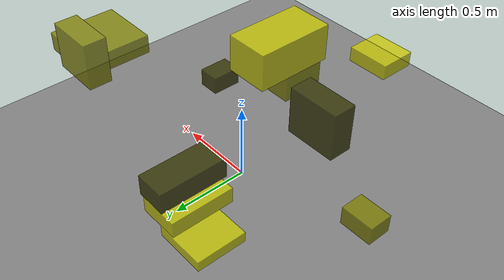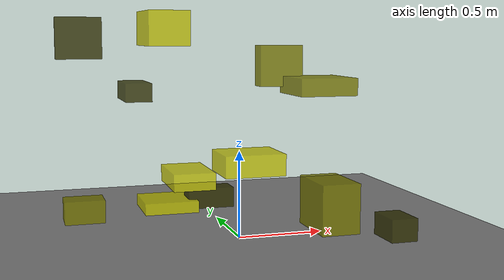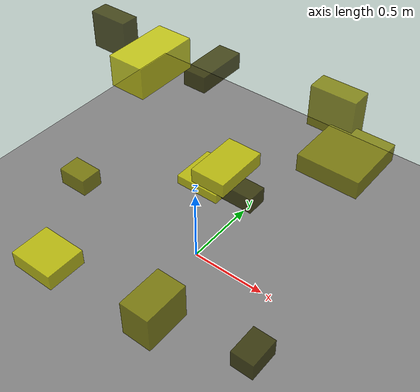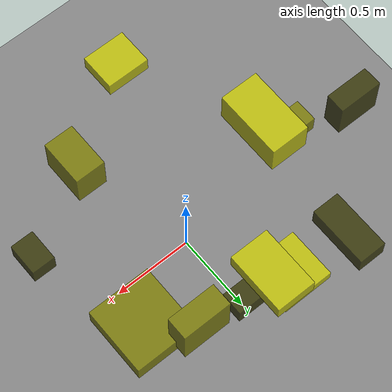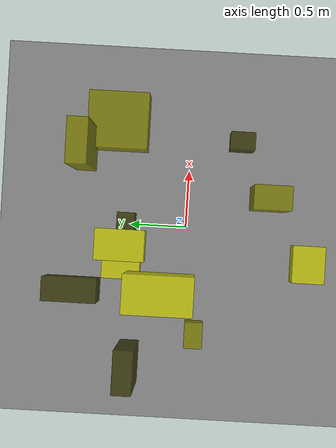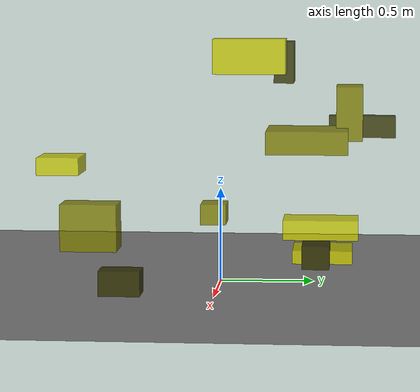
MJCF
<?xml version="1.0"?>
<mujoco model="obstacle_scene">
  <compiler angle="radian" coordinate="local"/>
  <option timestep="0.001" gravity="0 0 -9.81"/>

  <asset>
    <material name="obstacle_mat" rgba="0.8 0.8 0.0 0.8"/>
    <material name="ground_mat" rgba="0.5 0.5 0.5 1"/>
  </asset>

  <worldbody>
    <!-- Ground plane -->
    <geom name="ground" type="plane" size="3 3 0.1" material="ground_mat"/>

    <!-- Obstacles -->
    <body name="obstacle_0" pos="-0.475773 0.759347 0.800402">
      <geom name="obs_0" type="box" size="0.082573 0.185118 0.057382" rgba="0.2 0.2 0.0 0.8"/>
    </body>
    <body name="obstacle_1" pos="-0.887403 -0.107314 0.242988">
      <geom name="obs_1" type="box" size="0.103717 0.074830 0.059809" rgba="0.5 0.5 0.0 0.8"/>
    </body>
    <body name="obstacle_2" pos="-0.411317 0.129481 1.194492">
      <geom name="obs_2" type="box" size="0.113041 0.202735 0.096313" rgba="0.8 0.8 0.0 0.8"/>
    </body>
    <body name="obstacle_3" pos="0.756996 -0.445992 0.120906">
      <geom name="obs_3" type="box" size="0.075254 0.104441 0.062459" rgba="0.2 0.2 0.0 0.8"/>
    </body>
    <body name="obstacle_4" pos="0.480089 0.689177 0.954193">
      <geom name="obs_4" type="box" size="0.144467 0.065861 0.134502" rgba="0.5 0.5 0.0 0.8"/>
    </body>
    <body name="obstacle_5" pos="-0.234584 -0.911238 0.597402">
      <geom name="obs_5" type="box" size="0.135967 0.116774 0.048002" rgba="0.8 0.8 0.0 0.8"/>
    </body>
    <body name="obstacle_6" pos="-0.048531 0.513057 0.139396">
      <geom name="obs_6" type="box" size="0.143719 0.073639 0.061203" rgba="0.2 0.2 0.0 0.8"/>
    </body>
    <body name="obstacle_7" pos="0.676147 0.482634 0.831288">
      <geom name="obs_7" type="box" size="0.188151 0.200395 0.055871" rgba="0.5 0.5 0.0 0.8"/>
    </body>
    <body name="obstacle_8" pos="-0.179447 0.535321 0.266417">
      <geom name="obs_8" type="box" size="0.130007 0.204101 0.052708" rgba="0.8 0.8 0.0 0.8"/>
    </body>
    <body name="obstacle_9" pos="-0.863651 0.307402 1.140282">
      <geom name="obs_9" type="box" size="0.127508 0.057261 0.117755" rgba="0.2 0.2 0.0 0.8"/>
    </body>
    <body name="obstacle_10" pos="0.262814 -0.672057 0.326255">
      <geom name="obs_10" type="box" size="0.096906 0.149340 0.123490" rgba="0.5 0.5 0.0 0.8"/>
    </body>
    <body name="obstacle_11" pos="-0.309940 0.544658 0.103399">
      <geom name="obs_11" type="box" size="0.165849 0.163332 0.034876" rgba="0.8 0.8 0.0 0.8"/>
    </body>
  </worldbody>
</mujoco>
